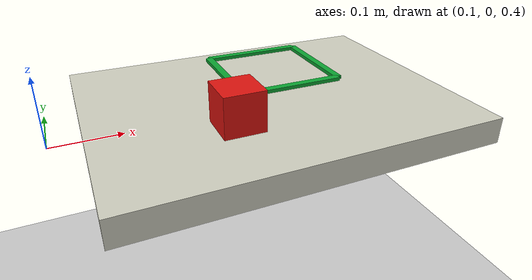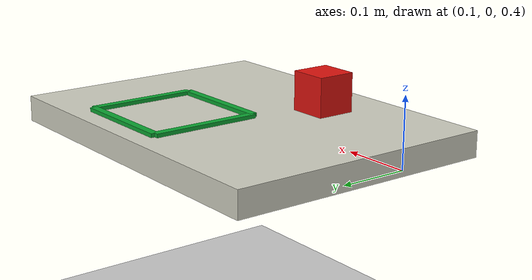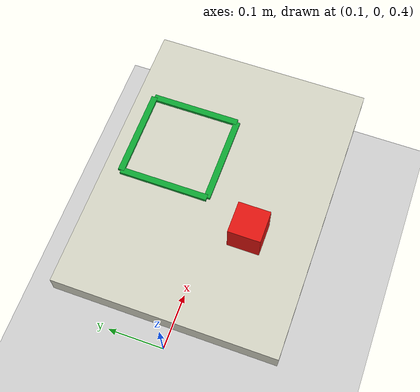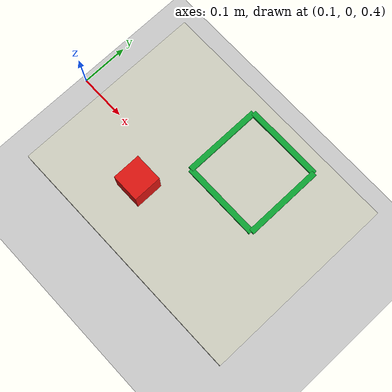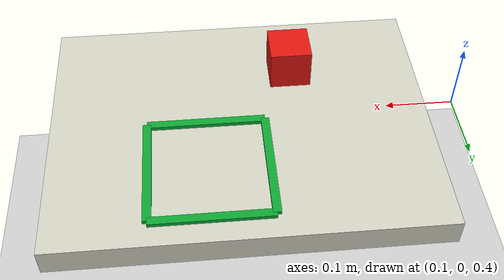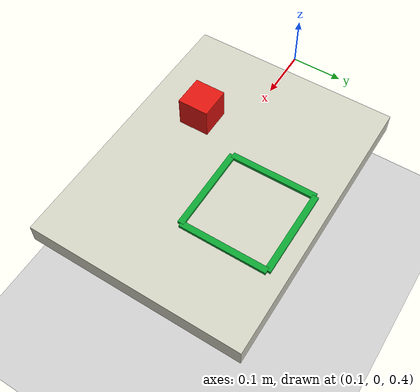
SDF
<?xml version="1.0" ?>
<sdf version="1.6">
  <world name="block_push">
    <physics name="default_physics" default="0" type="ode">
      <gravity>0 0 -9.8066</gravity>
      <ode>
        <solver>
          <iters>60</iters>
          <sor>1.3</sor>
        </solver>
        <constraints>
          <cfm>0</cfm>
          <erp>0.2</erp>
        </constraints>
      </ode>
      <max_step_size>0.005</max_step_size>
      <real_time_factor>1.0</real_time_factor>
    </physics>

    <scene>
      <ambient>0.58 0.58 0.58</ambient>
      <background>0.72 0.76 0.80</background>
    </scene>

    <include>
      <uri>model://ground plane</uri>
    </include>

    <include>
      <uri>model://sun</uri>
    </include>

    <!-- Low, close table for simple right-arm pushing. The robot is spawned at world origin with yaw=90deg. -->
    <model name="push_table">
      <static>true</static>
      <pose>0.42 0.02 0.39 0 0 0</pose>
      <link name="table_link">
        <collision name="table_collision">
          <geometry>
            <box>
              <size>0.55 0.42 0.04</size>
            </box>
          </geometry>
          <surface>
            <friction>
              <ode>
                <mu>0.85</mu>
                <mu2>0.85</mu2>
              </ode>
            </friction>
          </surface>
        </collision>
        <visual name="table_visual">
          <geometry>
            <box>
              <size>0.55 0.42 0.04</size>
            </box>
          </geometry>
          <material>
            <ambient>0.82 0.82 0.76 1</ambient>
            <diffuse>0.82 0.82 0.76 1</diffuse>
          </material>
        </visual>
      </link>
    </model>

    <!-- Visual-only target box. Push the red block fully inside this square. -->
    <model name="target_square">
      <static>true</static>
      <pose>0.47 0.11 0.414 0 0 0</pose>
      <link name="target_link">
        <visual name="front_edge">
          <pose>0 0.085 0 0 0 0</pose>
          <geometry>
            <box>
              <size>0.17 0.012 0.006</size>
            </box>
          </geometry>
          <material>
            <ambient>0.05 0.65 0.20 1</ambient>
            <diffuse>0.05 0.65 0.20 1</diffuse>
          </material>
        </visual>
        <visual name="back_edge">
          <pose>0 -0.085 0 0 0 0</pose>
          <geometry>
            <box>
              <size>0.17 0.012 0.006</size>
            </box>
          </geometry>
          <material>
            <ambient>0.05 0.65 0.20 1</ambient>
            <diffuse>0.05 0.65 0.20 1</diffuse>
          </material>
        </visual>
        <visual name="left_edge">
          <pose>-0.085 0 0 0 0 0</pose>
          <geometry>
            <box>
              <size>0.012 0.17 0.006</size>
            </box>
          </geometry>
          <material>
            <ambient>0.05 0.65 0.20 1</ambient>
            <diffuse>0.05 0.65 0.20 1</diffuse>
          </material>
        </visual>
        <visual name="right_edge">
          <pose>0.085 0 0 0 0 0</pose>
          <geometry>
            <box>
              <size>0.012 0.17 0.006</size>
            </box>
          </geometry>
          <material>
            <ambient>0.05 0.65 0.20 1</ambient>
            <diffuse>0.05 0.65 0.20 1</diffuse>
          </material>
        </visual>
      </link>
    </model>

    <!-- Movable red wooden block. -->
    <model name="red_block">
      <static>false</static>
      <pose>0.34 -0.07 0.445 0 0 0</pose>
      <link name="block_link">
        <inertial>
          <mass>0.16</mass>
          <inertia>
            <ixx>0.00009</ixx>
            <iyy>0.00009</iyy>
            <izz>0.00009</izz>
            <ixy>0</ixy>
            <ixz>0</ixz>
            <iyz>0</iyz>
          </inertia>
        </inertial>
        <collision name="block_collision">
          <geometry>
            <box>
              <size>0.06 0.06 0.06</size>
            </box>
          </geometry>
          <surface>
            <friction>
              <ode>
                <mu>0.45</mu>
                <mu2>0.45</mu2>
              </ode>
            </friction>
          </surface>
        </collision>
        <visual name="block_visual">
          <geometry>
            <box>
              <size>0.06 0.06 0.06</size>
            </box>
          </geometry>
          <material>
            <ambient>0.88 0.08 0.06 1</ambient>
            <diffuse>0.88 0.08 0.06 1</diffuse>
            <specular>0.10 0.04 0.03 1</specular>
          </material>
        </visual>
      </link>
    </model>
  </world>
</sdf>
